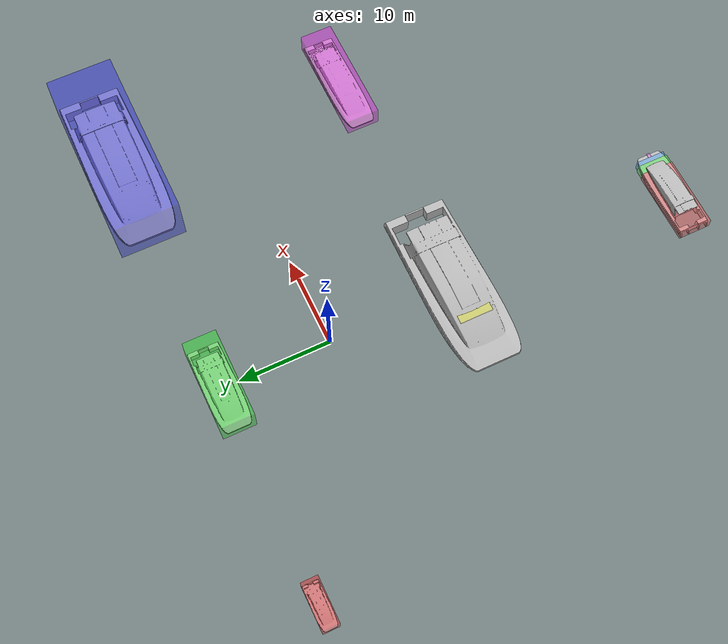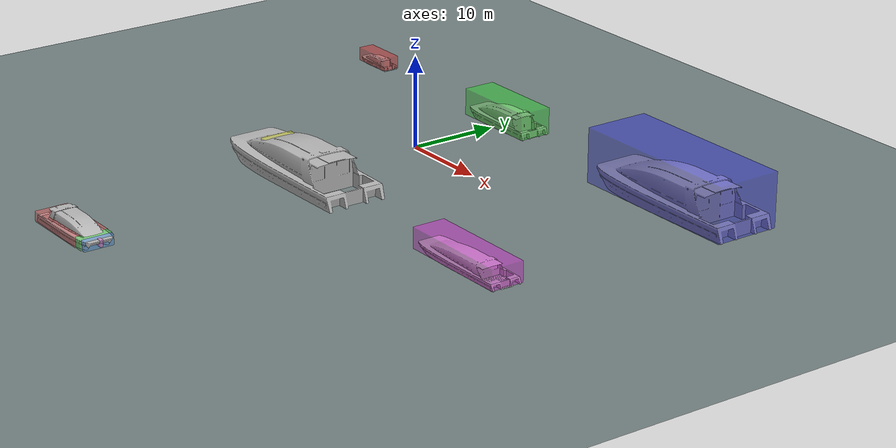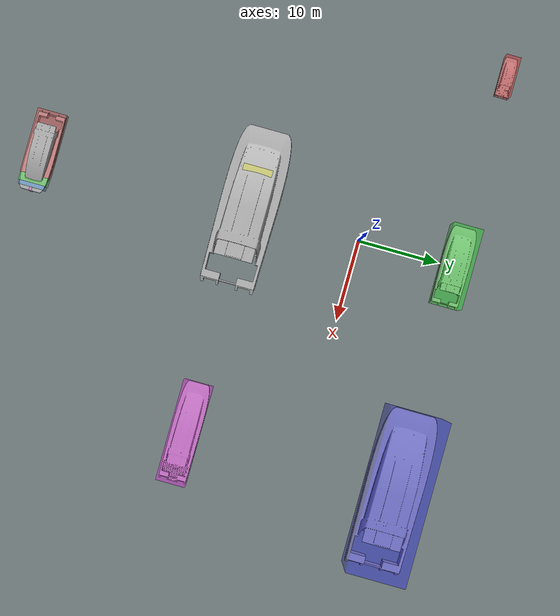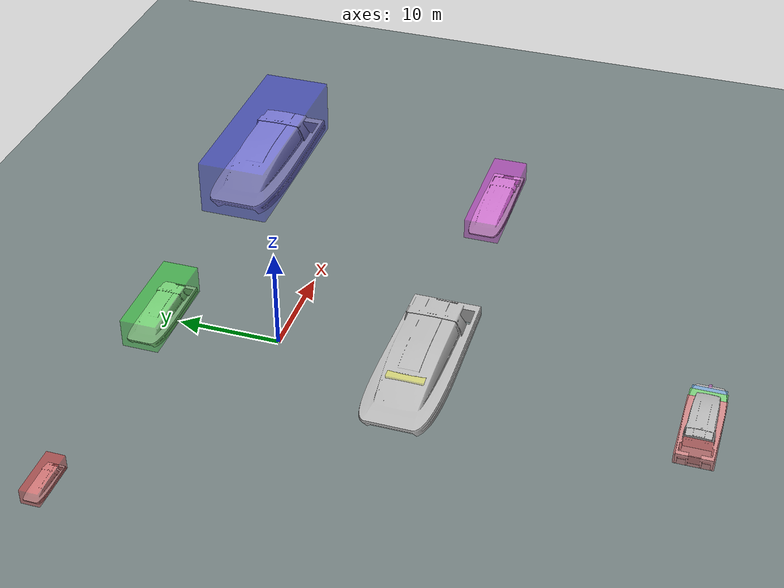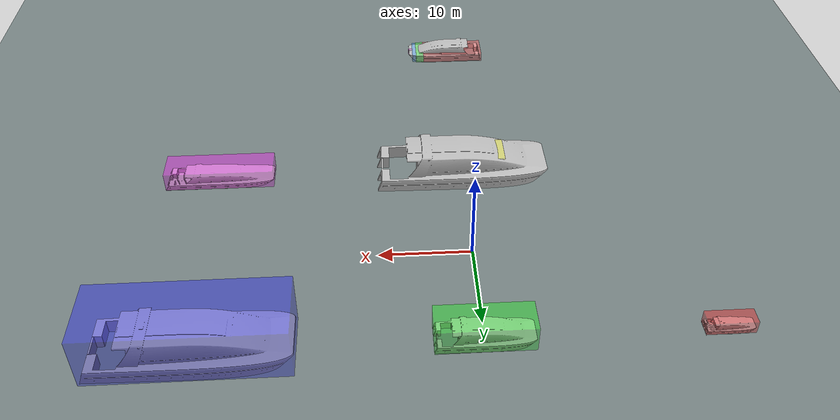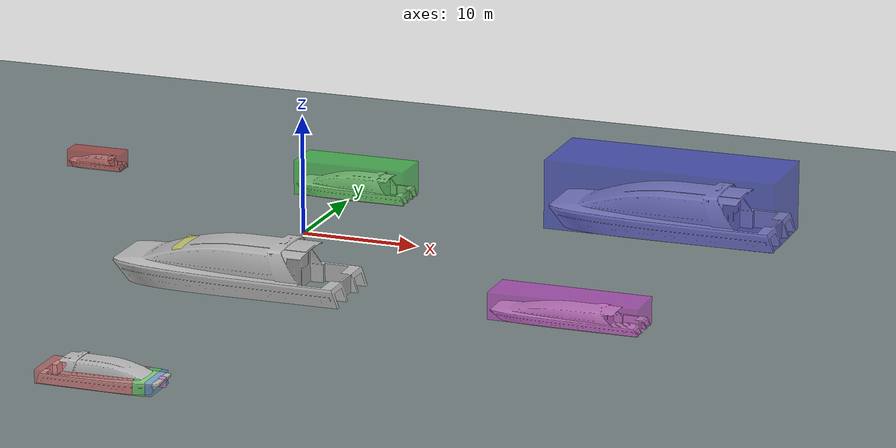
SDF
<?xml version="1.0" ?>
<sdf version="1.7">
  <world name="target_ship_scale_test">
    <scene>
      <ambient>0.75 0.75 0.75 1</ambient>
      <background>0.85 0.9 1 1</background>
      <grid>true</grid>
    </scene>

    <light name="sun" type="directional">
      <cast_shadows>true</cast_shadows>
      <pose>0 0 30 0 0 0</pose>
      <diffuse>0.9 0.9 0.9 1</diffuse>
      <specular>0.2 0.2 0.2 1</specular>
      <attenuation>
        <range>1000</range>
        <constant>0.9</constant>
        <linear>0.01</linear>
        <quadratic>0.001</quadratic>
      </attenuation>
      <direction>-0.25 0.15 -0.95</direction>
    </light>

    <model name="ground_plane">
      <static>true</static>
      <link name="link">
        <collision name="collision">
          <geometry>
            <plane>
              <normal>0 0 1</normal>
              <size>200 200</size>
            </plane>
          </geometry>
        </collision>
        <visual name="visual">
          <geometry>
            <plane>
              <normal>0 0 1</normal>
              <size>200 200</size>
            </plane>
          </geometry>
          <material>
            <ambient>0.4 0.45 0.45 1</ambient>
            <diffuse>0.45 0.5 0.5 1</diffuse>
          </material>
        </visual>
      </link>
    </model>

    <!-- Row A: collision 与 visual 同步缩放 -->
    <model name="target_ship_sync_scale_0p5">
      <static>true</static>
      <pose>-24 12 0 0 0 1.57079632679</pose>
      <link name="link">
        <collision name="hull">
          <pose>0 0 0.7331515175 0 0 0</pose>
          <geometry>
            <box>
              <size>1.8 4.949497 1.466303035</size>
            </box>
          </geometry>
        </collision>
        <visual name="collision_hint">
          <pose>0 0 0.7331515175 0 0 0</pose>
          <geometry>
            <box>
              <size>1.8 4.949497 1.466303035</size>
            </box>
          </geometry>
          <material>
            <ambient>1 0 0 0.35</ambient>
            <diffuse>1 0 0 0.35</diffuse>
          </material>
          <transparency>0.35</transparency>
        </visual>
        <visual name="ship_mesh">
          <pose>0 0.0002515 0.011303035 1.57079632679 0 0</pose>
          <geometry>
            <mesh>
              <uri>model://target_ship/10m.dae</uri>
              <scale>0.5 0.5 0.5</scale>
            </mesh>
          </geometry>
        </visual>
      </link>
    </model>

    <model name="target_ship_sync_scale_1p0">
      <static>true</static>
      <pose>0 12 0 0 0 1.57079632679</pose>
      <link name="link">
        <collision name="hull">
          <pose>0 0 1.466303035 0 0 0</pose>
          <geometry>
            <box>
              <size>3.6 9.898994 2.93260607</size>
            </box>
          </geometry>
        </collision>
        <visual name="collision_hint">
          <pose>0 0 1.466303035 0 0 0</pose>
          <geometry>
            <box>
              <size>3.6 9.898994 2.93260607</size>
            </box>
          </geometry>
          <material>
            <ambient>0 1 0 0.35</ambient>
            <diffuse>0 1 0 0.35</diffuse>
          </material>
          <transparency>0.35</transparency>
        </visual>
        <visual name="ship_mesh">
          <pose>0 0.000503 0.02260607 1.57079632679 0 0</pose>
          <geometry>
            <mesh>
              <uri>model://target_ship/10m.dae</uri>
              <scale>1 1 1</scale>
            </mesh>
          </geometry>
        </visual>
      </link>
    </model>

    <model name="target_ship_sync_scale_2p0">
      <static>true</static>
      <pose>28 12 0 0 0 1.57079632679</pose>
      <link name="link">
        <collision name="hull">
          <pose>0 0 2.93260607 0 0 0</pose>
          <geometry>
            <box>
              <size>7.2 19.797988 5.86521214</size>
            </box>
          </geometry>
        </collision>
        <visual name="collision_hint">
          <pose>0 0 2.93260607 0 0 0</pose>
          <geometry>
            <box>
              <size>7.2 19.797988 5.86521214</size>
            </box>
          </geometry>
          <material>
            <ambient>0 0 1 0.35</ambient>
            <diffuse>0 0 1 0.35</diffuse>
          </material>
          <transparency>0.35</transparency>
        </visual>
        <visual name="ship_mesh">
          <pose>0 0.001006 0.04521214 1.57079632679 0 0</pose>
          <geometry>
            <mesh>
              <uri>model://target_ship/10m.dae</uri>
              <scale>2 2 2</scale>
            </mesh>
          </geometry>
        </visual>
      </link>
    </model>

    <!-- Row B: visual-only 缩放 / 非等比缩放，对照 collision 是否同步 -->
    <model name="target_ship_visual_only_scale_2p0">
      <static>true</static>
      <pose>0 -14 0 0 0 1.57079632679</pose>
      <link name="link">
        <collision name="hull">
          <pose>0 0 1.466303035 0 0 0</pose>
          <geometry>
            <box>
              <size>3.6 9.898994 2.93260607</size>
            </box>
          </geometry>
        </collision>
        <visual name="collision_hint">
          <pose>0 0 1.466303035 0 0 0</pose>
          <geometry>
            <box>
              <size>3.6 9.898994 2.93260607</size>
            </box>
          </geometry>
          <material>
            <ambient>1 1 0 0.35</ambient>
            <diffuse>1 1 0 0.35</diffuse>
          </material>
          <transparency>0.35</transparency>
        </visual>
        <visual name="ship_mesh">
          <pose>0 0.001006 0.04521214 1.57079632679 0 0</pose>
          <geometry>
            <mesh>
              <uri>model://target_ship/10m.dae</uri>
              <scale>2 2 2</scale>
            </mesh>
          </geometry>
        </visual>
      </link>
    </model>

    <model name="target_ship_sync_scale_1_0_0_75_1_25">
      <static>true</static>
      <pose>28 -14 0 0 0 1.57079632679</pose>
      <link name="link">
        <collision name="hull">
          <pose>0 0 1.09972727625 0 0 0</pose>
          <geometry>
            <box>
              <size>3.6 12.3737425 2.1994545525</size>
            </box>
          </geometry>
        </collision>
        <visual name="collision_hint">
          <pose>0 0 1.09972727625 0 0 0</pose>
          <geometry>
            <box>
              <size>3.6 12.3737425 2.1994545525</size>
            </box>
          </geometry>
          <material>
            <ambient>1 0 1 0.35</ambient>
            <diffuse>1 0 1 0.35</diffuse>
          </material>
          <transparency>0.35</transparency>
        </visual>
        <visual name="ship_mesh">
          <pose>0 0.00062875 0.0169545525 1.57079632679 0 0</pose>
          <geometry>
            <mesh>
              <uri>model://target_ship/10m.dae</uri>
              <scale>1 0.75 1.25</scale>
            </mesh>
          </geometry>
        </visual>
      </link>
    </model>

    <!-- Row C: initial compound collision fit from 10m_collosion.md -->
    <model name="target_ship_profile_fit_v1">
      <static>true</static>
      <pose>0 -40 0 0 0 0</pose>
      <link name="link">
        <collision name="stern_main">
          <pose>-0.999497 0 0 0 0 0</pose>
          <geometry>
            <box>
              <size>8 3.6 2</size>
            </box>
          </geometry>
        </collision>
        <collision name="mid_front">
          <pose>3.500503 0 0.05 0 0 0</pose>
          <geometry>
            <box>
              <size>1 3.45 1.9</size>
            </box>
          </geometry>
        </collision>
        <collision name="fore_transition">
          <pose>4.250503 0 0.375 0 0 0</pose>
          <geometry>
            <box>
              <size>0.5 3.2 1.25</size>
            </box>
          </geometry>
        </collision>
        <collision name="bow_tip">
          <pose>4.750503 0 0.62 0 0 0</pose>
          <geometry>
            <box>
              <size>0.5 0.3 0.76</size>
            </box>
          </geometry>
        </collision>

        <visual name="stern_main_hint">
          <pose>-0.999497 0 0 0 0 0</pose>
          <geometry>
            <box>
              <size>8 3.6 2</size>
            </box>
          </geometry>
          <material>
            <ambient>1 0.3 0.3 0.4</ambient>
            <diffuse>1 0.3 0.3 0.4</diffuse>
          </material>
          <transparency>0.3</transparency>
        </visual>
        <visual name="mid_front_hint">
          <pose>3.500503 0 0.05 0 0 0</pose>
          <geometry>
            <box>
              <size>1 3.45 1.9</size>
            </box>
          </geometry>
          <material>
            <ambient>0.2 1 0.2 0.4</ambient>
            <diffuse>0.2 1 0.2 0.4</diffuse>
          </material>
          <transparency>0.3</transparency>
        </visual>
        <visual name="fore_transition_hint">
          <pose>4.250503 0 0.375 0 0 0</pose>
          <geometry>
            <box>
              <size>0.5 3.2 1.25</size>
            </box>
          </geometry>
          <material>
            <ambient>0.2 0.6 1 0.4</ambient>
            <diffuse>0.2 0.6 1 0.4</diffuse>
          </material>
          <transparency>0.3</transparency>
        </visual>
        <visual name="bow_tip_hint">
          <pose>4.750503 0 0.62 0 0 0</pose>
          <geometry>
            <box>
              <size>0.5 0.3 0.76</size>
            </box>
          </geometry>
          <material>
            <ambient>1 0.4 1 0.42</ambient>
            <diffuse>1 0.4 1 0.42</diffuse>
          </material>
          <transparency>0.28</transparency>
        </visual>

        <visual name="ship_mesh_profile">
          <pose>0.000503 0 0.02260607 1.57079632679 0 -1.57079632679</pose>
          <geometry>
            <mesh>
              <uri>model://target_ship/10m.dae</uri>
              <scale>1 1 1</scale>
            </mesh>
          </geometry>
        </visual>
      </link>
    </model>
  </world>
</sdf>
